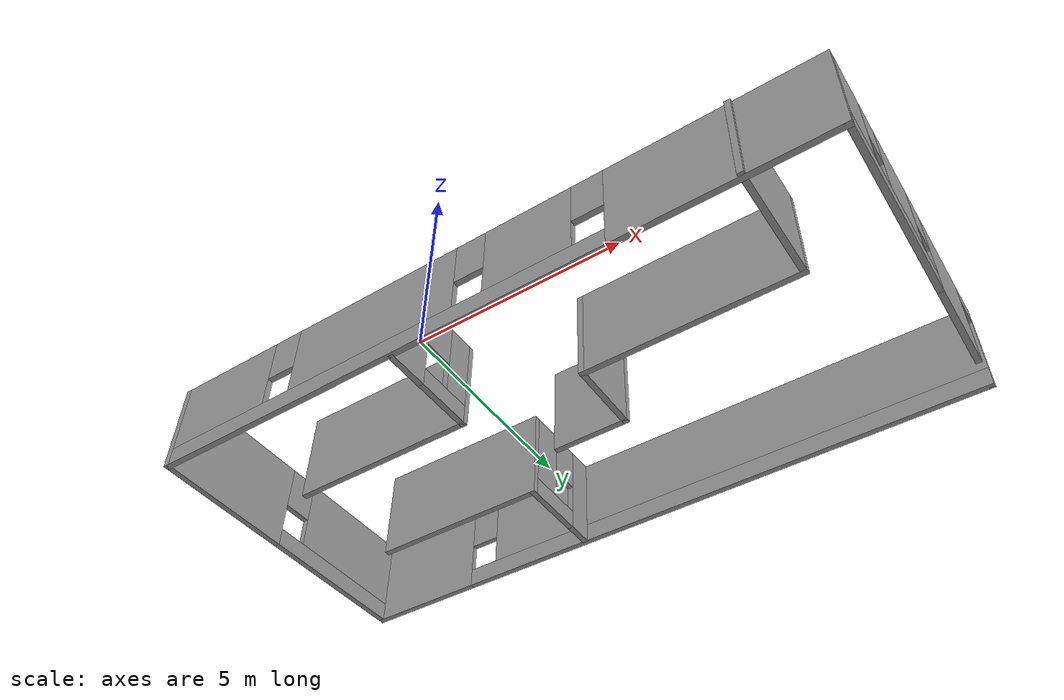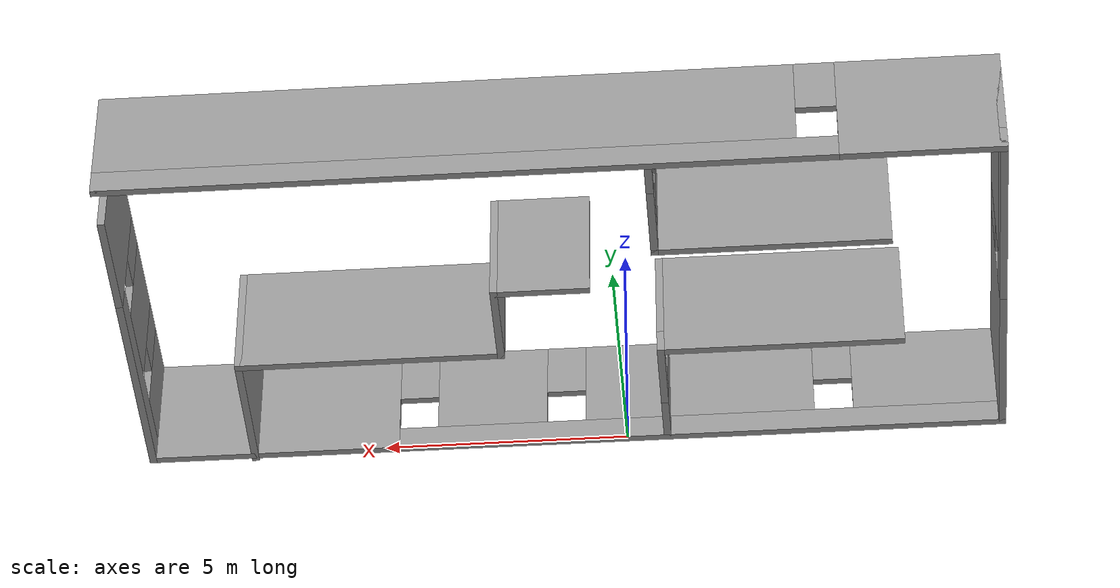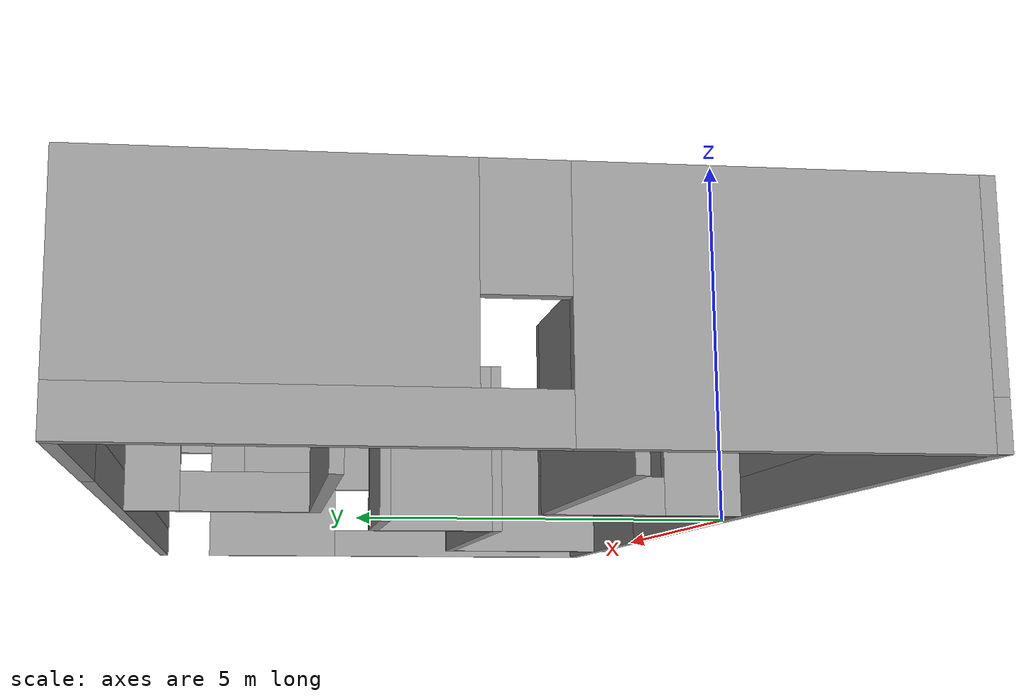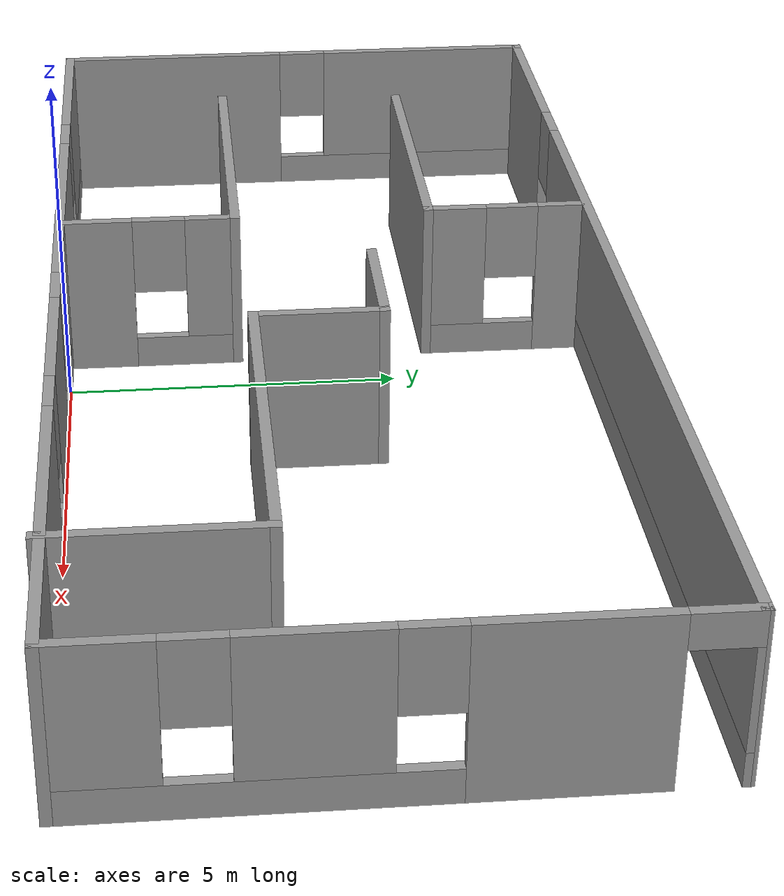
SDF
<?xml version='1.0'?>
<sdf version='1.7'>
  <model name='world'>
    <pose>1.08571 3.96011 0 0 -0 0</pose>
    <link name='Wall_11'>
      <pose>-8.8 0.038361 0 0 -0 1.5708</pose>
      <visual name='Wall_11_Visual_0'>
        <pose>-2.20315 0 1.25 0 -0 0</pose>
        <geometry>
          <box>
            <size>3.8437 0.15 2.5</size>
          </box>
        </geometry>
        <material>
          <script>
            <uri>file://media/materials/scripts/gazebo.material</uri>
            <name>Gazebo/Grey</name>
          </script>
          <ambient>1 1 1 1</ambient>
        </material>
        <meta>
          <layer>0</layer>
        </meta>
      </visual>
      <collision name='Wall_11_Collision_0'>
        <geometry>
          <box>
            <size>3.8437 0.15 2.5</size>
          </box>
        </geometry>
        <pose>-2.20315 0 1.25 0 -0 0</pose>
      </collision>
      <visual name='Wall_11_Visual_1'>
        <pose>1.92185 0 0.25 0 -0 0</pose>
        <geometry>
          <box>
            <size>4.4063 0.15 0.5</size>
          </box>
        </geometry>
        <material>
          <script>
            <uri>file://media/materials/scripts/gazebo.material</uri>
            <name>Gazebo/Grey</name>
          </script>
          <ambient>1 1 1 1</ambient>
        </material>
        <meta>
          <layer>0</layer>
        </meta>
      </visual>
      <collision name='Wall_11_Collision_1'>
        <geometry>
          <box>
            <size>4.4063 0.15 0.5</size>
          </box>
        </geometry>
        <pose>1.92185 0 0.25 0 -0 0</pose>
      </collision>
      <visual name='Wall_11_Visual_2'>
        <pose>2.32185 0 1.5 0 -0 0</pose>
        <geometry>
          <box>
            <size>3.6063 0.15 2</size>
          </box>
        </geometry>
        <material>
          <script>
            <uri>file://media/materials/scripts/gazebo.material</uri>
            <name>Gazebo/Grey</name>
          </script>
          <ambient>1 1 1 1</ambient>
        </material>
        <meta>
          <layer>0</layer>
        </meta>
      </visual>
      <collision name='Wall_11_Collision_2'>
        <geometry>
          <box>
            <size>3.6063 0.15 2</size>
          </box>
        </geometry>
        <pose>2.32185 0 1.5 0 -0 0</pose>
      </collision>
      <visual name='Wall_11_Visual_3'>
        <pose>0.118702 0 1.9 0 -0 0</pose>
        <geometry>
          <box>
            <size>0.8 0.15 1.2</size>
          </box>
        </geometry>
        <material>
          <script>
            <uri>file://media/materials/scripts/gazebo.material</uri>
            <name>Gazebo/Grey</name>
          </script>
          <ambient>1 1 1 1</ambient>
        </material>
        <meta>
          <layer>0</layer>
        </meta>
      </visual>
      <collision name='Wall_11_Collision_3'>
        <geometry>
          <box>
            <size>0.8 0.15 1.2</size>
          </box>
        </geometry>
        <pose>0.118702 0 1.9 0 -0 0</pose>
      </collision>
    </link>
    <link name='Wall_12'>
      <pose>-0 4.08836 0 0 -0 0</pose>
      <visual name='Wall_12_Visual_0'>
        <pose>-7.25569 0 1.25 0 -0 0</pose>
        <geometry>
          <box>
            <size>3.23861 0.15 2.5</size>
          </box>
        </geometry>
        <material>
          <script>
            <uri>file://media/materials/scripts/gazebo.material</uri>
            <name>Gazebo/Grey</name>
          </script>
          <ambient>1 1 1 1</ambient>
        </material>
        <meta>
          <layer>0</layer>
        </meta>
      </visual>
      <collision name='Wall_12_Collision_0'>
        <geometry>
          <box>
            <size>3.23861 0.15 2.5</size>
          </box>
        </geometry>
        <pose>-7.25569 0 1.25 0 -0 0</pose>
      </collision>
      <visual name='Wall_12_Visual_1'>
        <pose>1.61931 0 0.25 0 -0 0</pose>
        <geometry>
          <box>
            <size>14.5114 0.15 0.5</size>
          </box>
        </geometry>
        <material>
          <script>
            <uri>file://media/materials/scripts/gazebo.material</uri>
            <name>Gazebo/Grey</name>
          </script>
          <ambient>1 1 1 1</ambient>
        </material>
        <meta>
          <layer>0</layer>
        </meta>
      </visual>
      <collision name='Wall_12_Collision_1'>
        <geometry>
          <box>
            <size>14.5114 0.15 0.5</size>
          </box>
        </geometry>
        <pose>1.61931 0 0.25 0 -0 0</pose>
      </collision>
      <visual name='Wall_12_Visual_2'>
        <pose>2.01931 0 1.5 0 -0 0</pose>
        <geometry>
          <box>
            <size>13.7114 0.15 2</size>
          </box>
        </geometry>
        <material>
          <script>
            <uri>file://media/materials/scripts/gazebo.material</uri>
            <name>Gazebo/Grey</name>
          </script>
          <ambient>1 1 1 1</ambient>
        </material>
        <meta>
          <layer>0</layer>
        </meta>
      </visual>
      <collision name='Wall_12_Collision_2'>
        <geometry>
          <box>
            <size>13.7114 0.15 2</size>
          </box>
        </geometry>
        <pose>2.01931 0 1.5 0 -0 0</pose>
      </collision>
      <visual name='Wall_12_Visual_3'>
        <pose>-5.23639 0 1.9 0 -0 0</pose>
        <geometry>
          <box>
            <size>0.8 0.15 1.2</size>
          </box>
        </geometry>
        <material>
          <script>
            <uri>file://media/materials/scripts/gazebo.material</uri>
            <name>Gazebo/Grey</name>
          </script>
          <ambient>1 1 1 1</ambient>
        </material>
        <meta>
          <layer>0</layer>
        </meta>
      </visual>
      <collision name='Wall_12_Collision_3'>
        <geometry>
          <box>
            <size>0.8 0.15 1.2</size>
          </box>
        </geometry>
        <pose>-5.23639 0 1.9 0 -0 0</pose>
      </collision>
    </link>
    <link name='Wall_13'>
      <pose>8.8 0.038361 0 0 -0 -1.5708</pose>
      <visual name='Wall_13_Visual_0'>
        <pose>-4.10039 0 1.25 0 -0 0</pose>
        <geometry>
          <box>
            <size>0.049209 0.15 2.5</size>
          </box>
        </geometry>
        <material>
          <script>
            <uri>file://media/materials/scripts/gazebo.material</uri>
            <name>Gazebo/Grey</name>
          </script>
          <ambient>1 1 1 1</ambient>
        </material>
        <meta>
          <layer>0</layer>
        </meta>
      </visual>
      <collision name='Wall_13_Collision_0'>
        <geometry>
          <box>
            <size>0.049209 0.15 2.5</size>
          </box>
        </geometry>
        <pose>-4.10039 0 1.25 0 -0 0</pose>
      </collision>
      <visual name='Wall_13_Visual_1'>
        <pose>-1.95492 0 1.25 0 -0 0</pose>
        <geometry>
          <box>
            <size>2.44174 0.15 2.5</size>
          </box>
        </geometry>
        <material>
          <script>
            <uri>file://media/materials/scripts/gazebo.material</uri>
            <name>Gazebo/Grey</name>
          </script>
          <ambient>1 1 1 1</ambient>
        </material>
        <meta>
          <layer>0</layer>
        </meta>
      </visual>
      <collision name='Wall_13_Collision_1'>
        <geometry>
          <box>
            <size>2.44174 0.15 2.5</size>
          </box>
        </geometry>
        <pose>-1.95492 0 1.25 0 -0 0</pose>
      </collision>
      <visual name='Wall_13_Visual_2'>
        <pose>-0.734049 0 1.25 0 -0 0</pose>
        <geometry>
          <box>
            <size>0 0.15 2.5</size>
          </box>
        </geometry>
        <material>
          <script>
            <uri>file://media/materials/scripts/gazebo.material</uri>
            <name>Gazebo/Grey</name>
          </script>
          <ambient>1 1 1 1</ambient>
        </material>
        <meta>
          <layer>0</layer>
        </meta>
      </visual>
      <collision name='Wall_13_Collision_2'>
        <geometry>
          <box>
            <size>0 0.15 2.5</size>
          </box>
        </geometry>
        <pose>-0.734049 0 1.25 0 -0 0</pose>
      </collision>
      <visual name='Wall_13_Visual_3'>
        <pose>1.69548 0 0.25 0 -0 0</pose>
        <geometry>
          <box>
            <size>4.85905 0.15 0.5</size>
          </box>
        </geometry>
        <material>
          <script>
            <uri>file://media/materials/scripts/gazebo.material</uri>
            <name>Gazebo/Grey</name>
          </script>
          <ambient>1 1 1 1</ambient>
        </material>
        <meta>
          <layer>0</layer>
        </meta>
      </visual>
      <collision name='Wall_13_Collision_3'>
        <geometry>
          <box>
            <size>4.85905 0.15 0.5</size>
          </box>
        </geometry>
        <pose>1.69548 0 0.25 0 -0 0</pose>
      </collision>
      <visual name='Wall_13_Visual_4'>
        <pose>0.9888 0 1.5 0 -0 0</pose>
        <geometry>
          <box>
            <size>1.8457 0.15 2</size>
          </box>
        </geometry>
        <material>
          <script>
            <uri>file://media/materials/scripts/gazebo.material</uri>
            <name>Gazebo/Grey</name>
          </script>
          <ambient>1 1 1 1</ambient>
        </material>
        <meta>
          <layer>0</layer>
        </meta>
      </visual>
      <collision name='Wall_13_Collision_4'>
        <geometry>
          <box>
            <size>1.8457 0.15 2</size>
          </box>
        </geometry>
        <pose>0.9888 0 1.5 0 -0 0</pose>
      </collision>
      <visual name='Wall_13_Visual_5'>
        <pose>3.41832 0 1.5 0 -0 0</pose>
        <geometry>
          <box>
            <size>1.41335 0.15 2</size>
          </box>
        </geometry>
        <material>
          <script>
            <uri>file://media/materials/scripts/gazebo.material</uri>
            <name>Gazebo/Grey</name>
          </script>
          <ambient>1 1 1 1</ambient>
        </material>
        <meta>
          <layer>0</layer>
        </meta>
      </visual>
      <collision name='Wall_13_Collision_5'>
        <geometry>
          <box>
            <size>1.41335 0.15 2</size>
          </box>
        </geometry>
        <pose>3.41832 0 1.5 0 -0 0</pose>
      </collision>
      <visual name='Wall_13_Visual_6'>
        <pose>-0.734049 0 1.9 0 -0 0</pose>
        <geometry>
          <box>
            <size>0 0.15 1.2</size>
          </box>
        </geometry>
        <material>
          <script>
            <uri>file://media/materials/scripts/gazebo.material</uri>
            <name>Gazebo/Grey</name>
          </script>
          <ambient>1 1 1 1</ambient>
        </material>
        <meta>
          <layer>0</layer>
        </meta>
      </visual>
      <collision name='Wall_13_Collision_6'>
        <geometry>
          <box>
            <size>0 0.15 1.2</size>
          </box>
        </geometry>
        <pose>-0.734049 0 1.9 0 -0 0</pose>
      </collision>
      <visual name='Wall_13_Visual_7'>
        <pose>-0.334049 0 1.9 0 -0 0</pose>
        <geometry>
          <box>
            <size>0.8 0.15 1.2</size>
          </box>
        </geometry>
        <material>
          <script>
            <uri>file://media/materials/scripts/gazebo.material</uri>
            <name>Gazebo/Grey</name>
          </script>
          <ambient>1 1 1 1</ambient>
        </material>
        <meta>
          <layer>0</layer>
        </meta>
      </visual>
      <collision name='Wall_13_Collision_7'>
        <geometry>
          <box>
            <size>0.8 0.15 1.2</size>
          </box>
        </geometry>
        <pose>-0.334049 0 1.9 0 -0 0</pose>
      </collision>
      <visual name='Wall_13_Visual_8'>
        <pose>2.31165 0 1.9 0 -0 0</pose>
        <geometry>
          <box>
            <size>0.8 0.15 1.2</size>
          </box>
        </geometry>
        <material>
          <script>
            <uri>file://media/materials/scripts/gazebo.material</uri>
            <name>Gazebo/Grey</name>
          </script>
          <ambient>1 1 1 1</ambient>
        </material>
        <meta>
          <layer>0</layer>
        </meta>
      </visual>
      <collision name='Wall_13_Collision_8'>
        <geometry>
          <box>
            <size>0.8 0.15 1.2</size>
          </box>
        </geometry>
        <pose>2.31165 0 1.9 0 -0 0</pose>
      </collision>
      <visual name='Wall_13_Visual_9'>
        <pose>-3.62579 0 2.25 0 -0 0</pose>
        <geometry>
          <box>
            <size>0.9 0.15 0.5</size>
          </box>
        </geometry>
        <material>
          <script>
            <uri>file://media/materials/scripts/gazebo.material</uri>
            <name>Gazebo/Grey</name>
          </script>
          <ambient>1 1 1 1</ambient>
        </material>
        <meta>
          <layer>0</layer>
        </meta>
      </visual>
      <collision name='Wall_13_Collision_9'>
        <geometry>
          <box>
            <size>0.9 0.15 0.5</size>
          </box>
        </geometry>
        <pose>-3.62579 0 2.25 0 -0 0</pose>
      </collision>
    </link>
    <link name='Wall_14'>
      <pose>-0 -4.01164 0 0 -0 3.14159</pose>
      <visual name='Wall_14_Visual_0'>
        <pose>-6.26473 0 1.25 0 -0 0</pose>
        <geometry>
          <box>
            <size>5.22054 0.15 2.5</size>
          </box>
        </geometry>
        <material>
          <script>
            <uri>file://media/materials/scripts/gazebo.material</uri>
            <name>Gazebo/Grey</name>
          </script>
          <ambient>1 1 1 1</ambient>
        </material>
        <meta>
          <layer>0</layer>
        </meta>
      </visual>
      <collision name='Wall_14_Collision_0'>
        <geometry>
          <box>
            <size>5.22054 0.15 2.5</size>
          </box>
        </geometry>
        <pose>-6.26473 0 1.25 0 -0 0</pose>
      </collision>
      <visual name='Wall_14_Visual_1'>
        <pose>2.61027 0 0.25 0 -0 0</pose>
        <geometry>
          <box>
            <size>12.5295 0.15 0.5</size>
          </box>
        </geometry>
        <material>
          <script>
            <uri>file://media/materials/scripts/gazebo.material</uri>
            <name>Gazebo/Grey</name>
          </script>
          <ambient>1 1 1 1</ambient>
        </material>
        <meta>
          <layer>0</layer>
        </meta>
      </visual>
      <collision name='Wall_14_Collision_1'>
        <geometry>
          <box>
            <size>12.5295 0.15 0.5</size>
          </box>
        </geometry>
        <pose>2.61027 0 0.25 0 -0 0</pose>
      </collision>
      <visual name='Wall_14_Visual_2'>
        <pose>-1.71626 0 1.5 0 -0 0</pose>
        <geometry>
          <box>
            <size>2.27639 0.15 2</size>
          </box>
        </geometry>
        <material>
          <script>
            <uri>file://media/materials/scripts/gazebo.material</uri>
            <name>Gazebo/Grey</name>
          </script>
          <ambient>1 1 1 1</ambient>
        </material>
        <meta>
          <layer>0</layer>
        </meta>
      </visual>
      <collision name='Wall_14_Collision_2'>
        <geometry>
          <box>
            <size>2.27639 0.15 2</size>
          </box>
        </geometry>
        <pose>-1.71626 0 1.5 0 -0 0</pose>
      </collision>
      <visual name='Wall_14_Visual_3'>
        <pose>2.59069 0 1.5 0 -0 0</pose>
        <geometry>
          <box>
            <size>4.73751 0.15 2</size>
          </box>
        </geometry>
        <material>
          <script>
            <uri>file://media/materials/scripts/gazebo.material</uri>
            <name>Gazebo/Grey</name>
          </script>
          <ambient>1 1 1 1</ambient>
        </material>
        <meta>
          <layer>0</layer>
        </meta>
      </visual>
      <collision name='Wall_14_Collision_3'>
        <geometry>
          <box>
            <size>4.73751 0.15 2</size>
          </box>
        </geometry>
        <pose>2.59069 0 1.5 0 -0 0</pose>
      </collision>
      <visual name='Wall_14_Visual_4'>
        <pose>7.31722 0 1.5 0 -0 0</pose>
        <geometry>
          <box>
            <size>3.11556 0.15 2</size>
          </box>
        </geometry>
        <material>
          <script>
            <uri>file://media/materials/scripts/gazebo.material</uri>
            <name>Gazebo/Grey</name>
          </script>
          <ambient>1 1 1 1</ambient>
        </material>
        <meta>
          <layer>0</layer>
        </meta>
      </visual>
      <collision name='Wall_14_Collision_4'>
        <geometry>
          <box>
            <size>3.11556 0.15 2</size>
          </box>
        </geometry>
        <pose>7.31722 0 1.5 0 -0 0</pose>
      </collision>
      <visual name='Wall_14_Visual_5'>
        <pose>-3.25446 0 1.9 0 -0 0</pose>
        <geometry>
          <box>
            <size>0.8 0.15 1.2</size>
          </box>
        </geometry>
        <material>
          <script>
            <uri>file://media/materials/scripts/gazebo.material</uri>
            <name>Gazebo/Grey</name>
          </script>
          <ambient>1 1 1 1</ambient>
        </material>
        <meta>
          <layer>0</layer>
        </meta>
      </visual>
      <collision name='Wall_14_Collision_5'>
        <geometry>
          <box>
            <size>0.8 0.15 1.2</size>
          </box>
        </geometry>
        <pose>-3.25446 0 1.9 0 -0 0</pose>
      </collision>
      <visual name='Wall_14_Visual_6'>
        <pose>-0.178068 0 1.9 0 -0 0</pose>
        <geometry>
          <box>
            <size>0.8 0.15 1.2</size>
          </box>
        </geometry>
        <material>
          <script>
            <uri>file://media/materials/scripts/gazebo.material</uri>
            <name>Gazebo/Grey</name>
          </script>
          <ambient>1 1 1 1</ambient>
        </material>
        <meta>
          <layer>0</layer>
        </meta>
      </visual>
      <collision name='Wall_14_Collision_6'>
        <geometry>
          <box>
            <size>0.8 0.15 1.2</size>
          </box>
        </geometry>
        <pose>-0.178068 0 1.9 0 -0 0</pose>
      </collision>
      <visual name='Wall_14_Visual_7'>
        <pose>5.35944 0 1.9 0 -0 0</pose>
        <geometry>
          <box>
            <size>0.8 0.15 1.2</size>
          </box>
        </geometry>
        <material>
          <script>
            <uri>file://media/materials/scripts/gazebo.material</uri>
            <name>Gazebo/Grey</name>
          </script>
          <ambient>1 1 1 1</ambient>
        </material>
        <meta>
          <layer>0</layer>
        </meta>
      </visual>
      <collision name='Wall_14_Collision_7'>
        <geometry>
          <box>
            <size>0.8 0.15 1.2</size>
          </box>
        </geometry>
        <pose>5.35944 0 1.9 0 -0 0</pose>
      </collision>
    </link>
    <link name='Wall_16'>
      <pose>-1.94792 2.79935 0 0 -0 -1.5708</pose>
      <visual name='Wall_16_Visual_0'>
        <pose>-0.888235 0 1.25 0 -0 0</pose>
        <geometry>
          <box>
            <size>0.72353 0.15 2.5</size>
          </box>
        </geometry>
        <material>
          <script>
            <uri>file://media/materials/scripts/gazebo.material</uri>
            <name>Gazebo/Grey</name>
          </script>
          <ambient>1 1 1 1</ambient>
        </material>
        <meta>
          <layer>0</layer>
        </meta>
      </visual>
      <collision name='Wall_16_Collision_0'>
        <geometry>
          <box>
            <size>0.72353 0.15 2.5</size>
          </box>
        </geometry>
        <pose>-0.888235 0 1.25 0 -0 0</pose>
      </collision>
      <visual name='Wall_16_Visual_1'>
        <pose>0.361765 0 0.25 0 -0 0</pose>
        <geometry>
          <box>
            <size>1.77647 0.15 0.5</size>
          </box>
        </geometry>
        <material>
          <script>
            <uri>file://media/materials/scripts/gazebo.material</uri>
            <name>Gazebo/Grey</name>
          </script>
          <ambient>1 1 1 1</ambient>
        </material>
        <meta>
          <layer>0</layer>
        </meta>
      </visual>
      <collision name='Wall_16_Collision_1'>
        <geometry>
          <box>
            <size>1.77647 0.15 0.5</size>
          </box>
        </geometry>
        <pose>0.361765 0 0.25 0 -0 0</pose>
      </collision>
      <visual name='Wall_16_Visual_2'>
        <pose>0.761765 0 1.5 0 -0 0</pose>
        <geometry>
          <box>
            <size>0.97647 0.15 2</size>
          </box>
        </geometry>
        <material>
          <script>
            <uri>file://media/materials/scripts/gazebo.material</uri>
            <name>Gazebo/Grey</name>
          </script>
          <ambient>1 1 1 1</ambient>
        </material>
        <meta>
          <layer>0</layer>
        </meta>
      </visual>
      <collision name='Wall_16_Collision_2'>
        <geometry>
          <box>
            <size>0.97647 0.15 2</size>
          </box>
        </geometry>
        <pose>0.761765 0 1.5 0 -0 0</pose>
      </collision>
      <visual name='Wall_16_Visual_3'>
        <pose>-0.12647 0 1.9 0 -0 0</pose>
        <geometry>
          <box>
            <size>0.8 0.15 1.2</size>
          </box>
        </geometry>
        <material>
          <script>
            <uri>file://media/materials/scripts/gazebo.material</uri>
            <name>Gazebo/Grey</name>
          </script>
          <ambient>1 1 1 1</ambient>
        </material>
        <meta>
          <layer>0</layer>
        </meta>
      </visual>
      <collision name='Wall_16_Collision_3'>
        <geometry>
          <box>
            <size>0.8 0.15 1.2</size>
          </box>
        </geometry>
        <pose>-0.12647 0 1.9 0 -0 0</pose>
      </collision>
    </link>
    <link name='Wall_17'>
      <collision name='Wall_17_Collision'>
        <geometry>
          <box>
            <size>4.75 0.15 2.5</size>
          </box>
        </geometry>
        <pose>0 0 1.25 0 -0 0</pose>
      </collision>
      <visual name='Wall_17_Visual'>
        <pose>0 0 1.25 0 -0 0</pose>
        <geometry>
          <box>
            <size>4.75 0.15 2.5</size>
          </box>
        </geometry>
        <material>
          <script>
            <uri>file://media/materials/scripts/gazebo.material</uri>
            <name>Gazebo/Grey</name>
          </script>
          <ambient>1 1 1 1</ambient>
        </material>
        <meta>
          <layer>0</layer>
        </meta>
      </visual>
      <pose>-4.24792 1.62435 0 0 -0 3.14159</pose>
    </link>
    <link name='Wall_19'>
      <pose>-1.90724 -2.6534 0 0 -0 1.5708</pose>
      <visual name='Wall_19_Visual_0'>
        <pose>-0.8205 0 1.25 0 -0 0</pose>
        <geometry>
          <box>
            <size>1.109 0.15 2.5</size>
          </box>
        </geometry>
        <material>
          <script>
            <uri>file://media/materials/scripts/gazebo.material</uri>
            <name>Gazebo/Grey</name>
          </script>
          <ambient>1 1 1 1</ambient>
        </material>
        <meta>
          <layer>0</layer>
        </meta>
      </visual>
      <collision name='Wall_19_Collision_0'>
        <geometry>
          <box>
            <size>1.109 0.15 2.5</size>
          </box>
        </geometry>
        <pose>-0.8205 0 1.25 0 -0 0</pose>
      </collision>
      <visual name='Wall_19_Visual_1'>
        <pose>0.5545 0 0.25 0 -0 0</pose>
        <geometry>
          <box>
            <size>1.641 0.15 0.5</size>
          </box>
        </geometry>
        <material>
          <script>
            <uri>file://media/materials/scripts/gazebo.material</uri>
            <name>Gazebo/Grey</name>
          </script>
          <ambient>1 1 1 1</ambient>
        </material>
        <meta>
          <layer>0</layer>
        </meta>
      </visual>
      <collision name='Wall_19_Collision_1'>
        <geometry>
          <box>
            <size>1.641 0.15 0.5</size>
          </box>
        </geometry>
        <pose>0.5545 0 0.25 0 -0 0</pose>
      </collision>
      <visual name='Wall_19_Visual_2'>
        <pose>0.9545 0 1.5 0 -0 0</pose>
        <geometry>
          <box>
            <size>0.841 0.15 2</size>
          </box>
        </geometry>
        <material>
          <script>
            <uri>file://media/materials/scripts/gazebo.material</uri>
            <name>Gazebo/Grey</name>
          </script>
          <ambient>1 1 1 1</ambient>
        </material>
        <meta>
          <layer>0</layer>
        </meta>
      </visual>
      <collision name='Wall_19_Collision_2'>
        <geometry>
          <box>
            <size>0.841 0.15 2</size>
          </box>
        </geometry>
        <pose>0.9545 0 1.5 0 -0 0</pose>
      </collision>
      <visual name='Wall_19_Visual_3'>
        <pose>0.134 0 1.9 0 -0 0</pose>
        <geometry>
          <box>
            <size>0.8 0.15 1.2</size>
          </box>
        </geometry>
        <material>
          <script>
            <uri>file://media/materials/scripts/gazebo.material</uri>
            <name>Gazebo/Grey</name>
          </script>
          <ambient>1 1 1 1</ambient>
        </material>
        <meta>
          <layer>0</layer>
        </meta>
      </visual>
      <collision name='Wall_19_Collision_3'>
        <geometry>
          <box>
            <size>0.8 0.15 1.2</size>
          </box>
        </geometry>
        <pose>0.134 0 1.9 0 -0 0</pose>
      </collision>
    </link>
    <link name='Wall_20'>
      <collision name='Wall_20_Collision'>
        <geometry>
          <box>
            <size>5 0.15 2.5</size>
          </box>
        </geometry>
        <pose>0 0 1.25 0 -0 0</pose>
      </collision>
      <visual name='Wall_20_Visual'>
        <pose>0 0 1.25 0 -0 0</pose>
        <geometry>
          <box>
            <size>5 0.15 2.5</size>
          </box>
        </geometry>
        <material>
          <script>
            <uri>file://media/materials/scripts/gazebo.material</uri>
            <name>Gazebo/Grey</name>
          </script>
          <ambient>1 1 1 1</ambient>
        </material>
        <meta>
          <layer>0</layer>
        </meta>
      </visual>
      <pose>-4.33224 -1.3534 0 0 -0 3.14159</pose>
    </link>
    <link name='Wall_22'>
      <collision name='Wall_22_Collision'>
        <geometry>
          <box>
            <size>3 0.15 2.5</size>
          </box>
        </geometry>
        <pose>0 0 1.25 0 -0 0</pose>
      </collision>
      <visual name='Wall_22_Visual'>
        <pose>0 0 1.25 0 -0 0</pose>
        <geometry>
          <box>
            <size>3 0.15 2.5</size>
          </box>
        </geometry>
        <material>
          <script>
            <uri>file://media/materials/scripts/gazebo.material</uri>
            <name>Gazebo/Grey</name>
          </script>
          <ambient>1 1 1 1</ambient>
        </material>
        <meta>
          <layer>0</layer>
        </meta>
      </visual>
      <pose>6.66926 -2.66336 0 0 -0 1.5708</pose>
    </link>
    <link name='Wall_23'>
      <collision name='Wall_23_Collision'>
        <geometry>
          <box>
            <size>5.5 0.15 2.5</size>
          </box>
        </geometry>
        <pose>0 0 1.25 0 -0 0</pose>
      </collision>
      <visual name='Wall_23_Visual'>
        <pose>0 0 1.25 0 -0 0</pose>
        <geometry>
          <box>
            <size>5.5 0.15 2.5</size>
          </box>
        </geometry>
        <material>
          <script>
            <uri>file://media/materials/scripts/gazebo.material</uri>
            <name>Gazebo/Grey</name>
          </script>
          <ambient>1 1 1 1</ambient>
        </material>
        <meta>
          <layer>0</layer>
        </meta>
      </visual>
      <pose>3.99426 -1.23836 0 0 -0 3.14159</pose>
    </link>
    <link name='Wall_24'>
      <collision name='Wall_24_Collision'>
        <geometry>
          <box>
            <size>2 0.15 2.5</size>
          </box>
        </geometry>
        <pose>0 0 1.25 0 -0 0</pose>
      </collision>
      <visual name='Wall_24_Visual'>
        <pose>0 0 1.25 0 -0 0</pose>
        <geometry>
          <box>
            <size>2 0.15 2.5</size>
          </box>
        </geometry>
        <material>
          <script>
            <uri>file://media/materials/scripts/gazebo.material</uri>
            <name>Gazebo/Grey</name>
          </script>
          <ambient>1 1 1 1</ambient>
        </material>
        <meta>
          <layer>0</layer>
        </meta>
      </visual>
      <pose>1.31926 -0.313361 0 0 -0 1.5708</pose>
    </link>
    <link name='Wall_25'>
      <collision name='Wall_25_Collision'>
        <geometry>
          <box>
            <size>2 0.15 2.5</size>
          </box>
        </geometry>
        <pose>0 0 1.25 0 -0 0</pose>
      </collision>
      <visual name='Wall_25_Visual'>
        <pose>0 0 1.25 0 -0 0</pose>
        <geometry>
          <box>
            <size>2 0.15 2.5</size>
          </box>
        </geometry>
        <material>
          <script>
            <uri>file://media/materials/scripts/gazebo.material</uri>
            <name>Gazebo/Grey</name>
          </script>
          <ambient>1 1 1 1</ambient>
        </material>
        <meta>
          <layer>0</layer>
        </meta>
      </visual>
      <pose>0.394259 0.611639 0 0 -0 3.14159</pose>
    </link>
    <static>1</static>
  </model>
</sdf>
